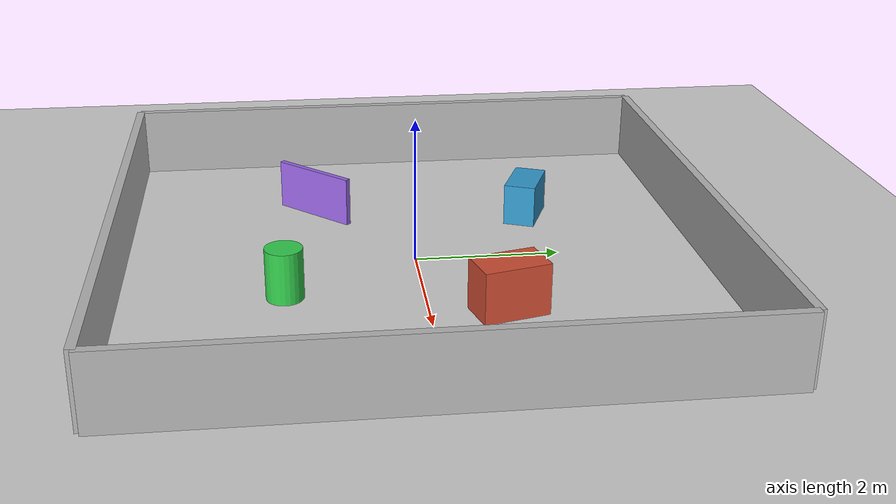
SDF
<?xml version="1.0" ?>
<sdf version="1.6">
  <world name="m10p_odom_test_world">
    <physics name="default_physics" type="ode">
      <real_time_update_rate>1000</real_time_update_rate>
      <max_step_size>0.001</max_step_size>
    </physics>

    <include><uri>model://sun</uri></include>
    <include><uri>model://ground_plane</uri></include>

    <!-- Boundary walls: enough large-scale structure for scan matching. -->
    <model name="north_wall">
      <static>true</static><pose>0 4 0.5 0 0 0</pose>
      <link name="link">
        <collision name="collision"><geometry><box><size>8 0.12 1.0</size></box></geometry></collision>
        <visual name="visual"><geometry><box><size>8 0.12 1.0</size></box></geometry><material><ambient>0.7 0.7 0.7 1</ambient></material></visual>
      </link>
    </model>
    <model name="south_wall">
      <static>true</static><pose>0 -4 0.5 0 0 0</pose>
      <link name="link">
        <collision name="collision"><geometry><box><size>8 0.12 1.0</size></box></geometry></collision>
        <visual name="visual"><geometry><box><size>8 0.12 1.0</size></box></geometry><material><ambient>0.7 0.7 0.7 1</ambient></material></visual>
      </link>
    </model>
    <model name="east_wall">
      <static>true</static><pose>4 0 0.5 0 0 0</pose>
      <link name="link">
        <collision name="collision"><geometry><box><size>0.12 8 1.0</size></box></geometry></collision>
        <visual name="visual"><geometry><box><size>0.12 8 1.0</size></box></geometry><material><ambient>0.7 0.7 0.7 1</ambient></material></visual>
      </link>
    </model>
    <model name="west_wall">
      <static>true</static><pose>-4 0 0.5 0 0 0</pose>
      <link name="link">
        <collision name="collision"><geometry><box><size>0.12 8 1.0</size></box></geometry></collision>
        <visual name="visual"><geometry><box><size>0.12 8 1.0</size></box></geometry><material><ambient>0.7 0.7 0.7 1</ambient></material></visual>
      </link>
    </model>

    <!-- Asymmetric obstacles reduce ICP degeneracy compared with an empty square room. -->
    <model name="box_1">
      <static>true</static><pose>1.7 1.0 0.35 0 0 0.25</pose>
      <link name="link">
        <collision name="collision"><geometry><box><size>0.55 0.9 0.7</size></box></geometry></collision>
        <visual name="visual"><geometry><box><size>0.55 0.9 0.7</size></box></geometry><material><ambient>0.8 0.3 0.2 1</ambient></material></visual>
      </link>
    </model>
    <model name="box_2">
      <static>true</static><pose>-1.4 1.8 0.3 0 0 -0.4</pose>
      <link name="link">
        <collision name="collision"><geometry><box><size>0.8 0.45 0.6</size></box></geometry></collision>
        <visual name="visual"><geometry><box><size>0.8 0.45 0.6</size></box></geometry><material><ambient>0.2 0.6 0.8 1</ambient></material></visual>
      </link>
    </model>
    <model name="cylinder_1">
      <static>true</static><pose>1.0 -1.8 0.35 0 0 0</pose>
      <link name="link">
        <collision name="collision"><geometry><cylinder><radius>0.25</radius><length>0.7</length></cylinder></geometry></collision>
        <visual name="visual"><geometry><cylinder><radius>0.25</radius><length>0.7</length></cylinder></geometry><material><ambient>0.2 0.8 0.3 1</ambient></material></visual>
      </link>
    </model>
    <model name="thin_wall_oblique">
      <static>true</static><pose>-1.8 -1.3 0.35 0 0 0.8</pose>
      <link name="link">
        <collision name="collision"><geometry><box><size>1.3 0.08 0.7</size></box></geometry></collision>
        <visual name="visual"><geometry><box><size>1.3 0.08 0.7</size></box></geometry><material><ambient>0.6 0.4 0.9 1</ambient></material></visual>
      </link>
    </model>
  </world>
</sdf>
